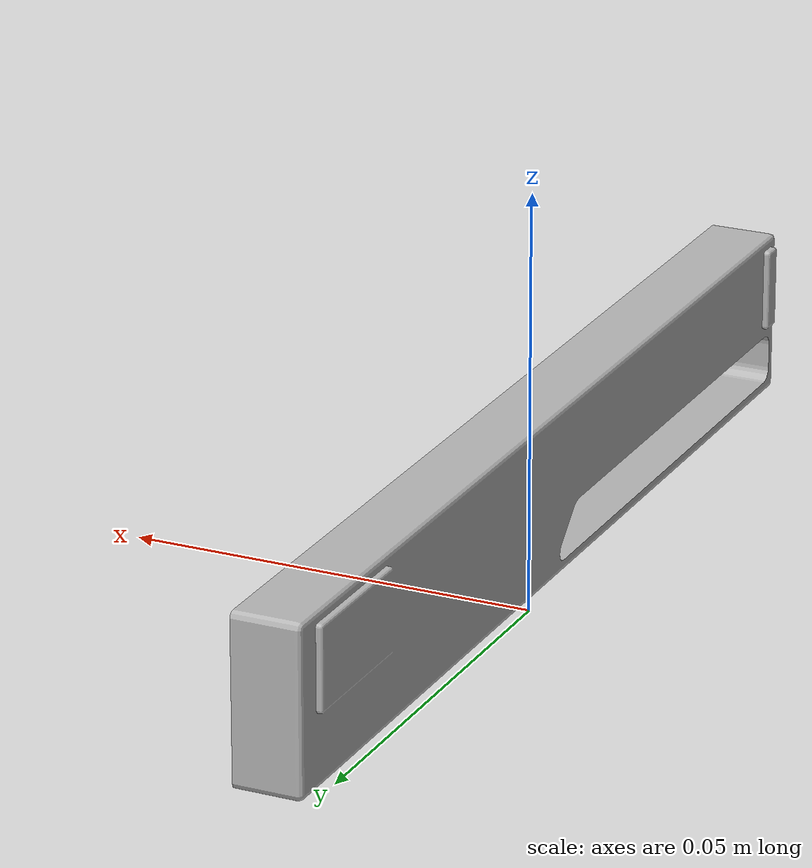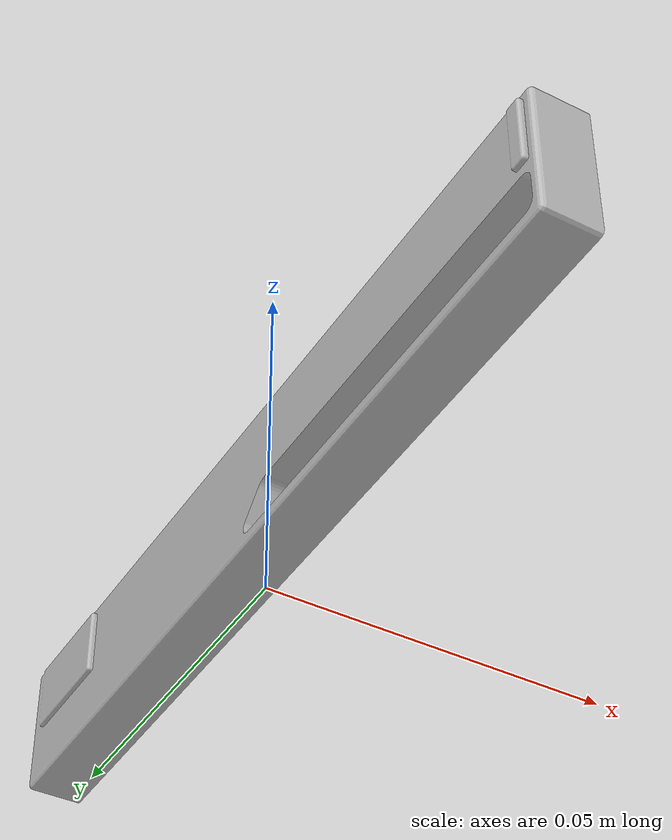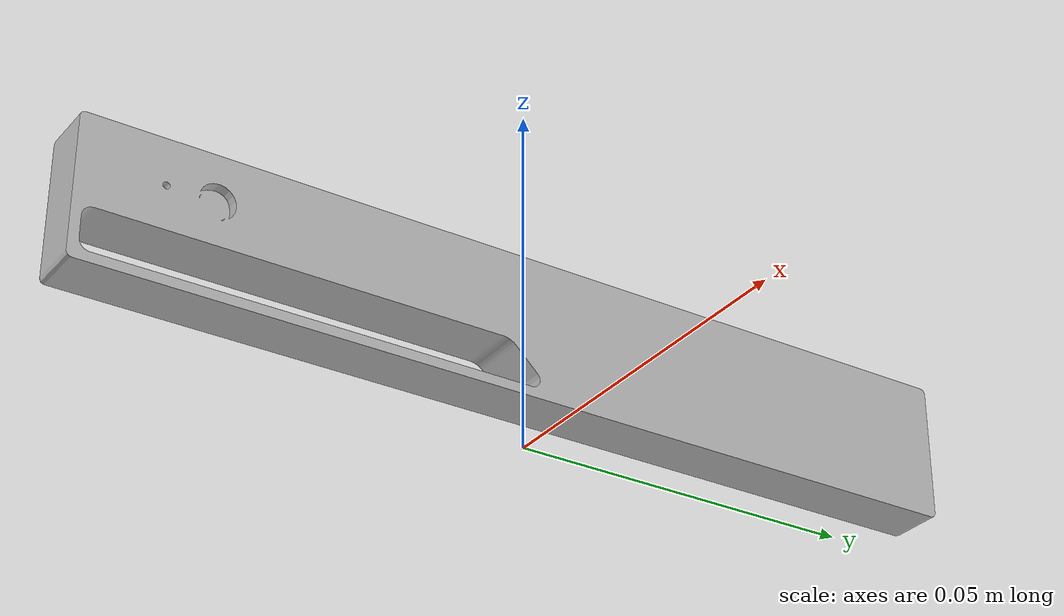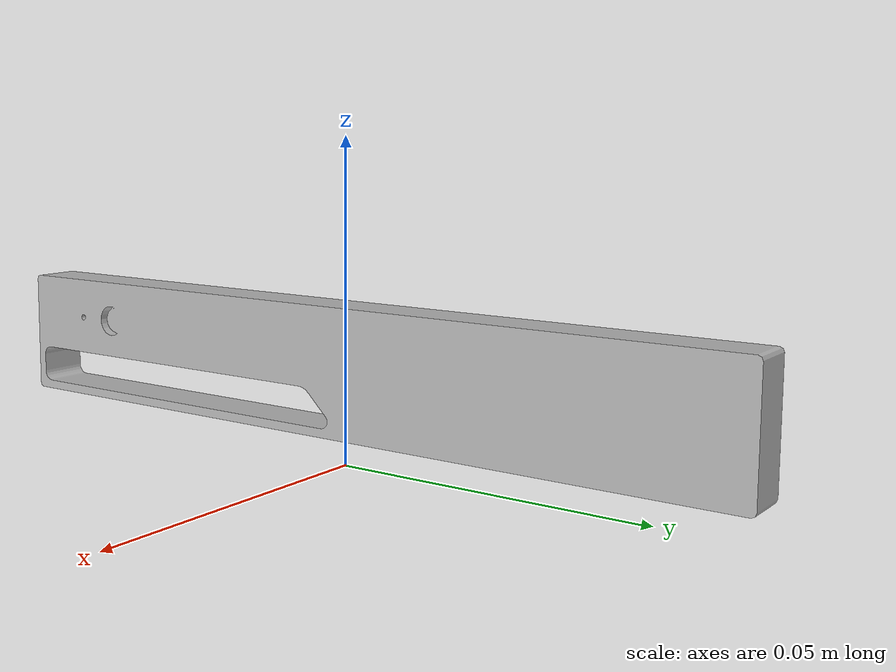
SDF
<?xml version="1.0"?>
<sdf version="1.4">
  <model name="realsense_camera">
    <plugin name="realsense_plugin" filename="librealsense_gazebo_plugin.so"/>
    <pose frame="">0 0 0.015 0 0 0</pose>
    <link name="link">
      <inertial>
        <mass>0.0615752</mass>
        <inertia>
          <ixx>9.108e-05</ixx>
          <ixy>0</ixy>
          <ixz>0</ixz>
          <iyy>2.51e-06</iyy>
          <iyz>0</iyz>
          <izz>8.931e-05</izz>
        </inertia>
        <pose frame=''>0 0 0 0 0 0</pose>
      </inertial>
      <self_collide>0</self_collide>
      <enable_wind>0</enable_wind>
      <kinematic>0</kinematic>
      <gravity>1</gravity>
      <visual name="visual">
        <geometry>
          <mesh>
            <uri>model://realsense_camera/meshes/realsense.dae</uri>
          </mesh>
        </geometry>
      </visual>
      <collision name='collision'>
        <laser_retro>0</laser_retro>
        <max_contacts>10</max_contacts>
        <pose frame=''>0 0 0 0 -0 0</pose>
        <geometry>
          <box>
            <size>0.0078 0.130 0.0192</size>
          </box>
        </geometry>
        <surface>
          <friction>
            <ode>
              <mu>1</mu>
              <mu2>1</mu2>
              <fdir1>0 0 0</fdir1>
              <slip1>0</slip1>
              <slip2>0</slip2>
            </ode>
            <torsional>
              <coefficient>1</coefficient>
              <patch_radius>0</patch_radius>
              <surface_radius>0</surface_radius>
              <use_patch_radius>1</use_patch_radius>
              <ode>
                <slip>0</slip>
              </ode>
            </torsional>
          </friction>
          <bounce>
            <restitution_coefficient>0</restitution_coefficient>
            <threshold>1e+06</threshold>
          </bounce>
          <contact>
            <collide_without_contact>0</collide_without_contact>
            <collide_without_contact_bitmask>1</collide_without_contact_bitmask>
            <collide_bitmask>1</collide_bitmask>
            <ode>
              <soft_cfm>0</soft_cfm>
              <soft_erp>0.2</soft_erp>
              <kp>1e+13</kp>
              <kd>1</kd>
              <max_vel>0.01</max_vel>
              <min_depth>0</min_depth>
            </ode>
            <bullet>
              <split_impulse>1</split_impulse>
              <split_impulse_penetration_threshold>-0.01</split_impulse_penetration_threshold>
              <soft_cfm>0</soft_cfm>
              <soft_erp>0.2</soft_erp>
              <kp>1e+13</kp>
              <kd>1</kd>
            </bullet>
          </contact>
        </surface>
      </collision>
      <sensor name="color" type="camera">
        <pose frame="">0 -0.046 0.004 0 0 0</pose>
        <camera name="__default__">
          <horizontal_fov>1.047</horizontal_fov>
          <image>
            <width>640</width>
            <height>480</height>
            <format>RGB_INT8</format>
          </image>
          <clip>
            <near>0.1</near>
            <far>100</far>
          </clip>
          <noise>
            <type>gaussian</type>
            <mean>0.0</mean>
            <stddev>0.007</stddev>
          </noise>
        </camera>
        <always_on>1</always_on>
        <update_rate>60</update_rate>
        <visualize>1</visualize>
      </sensor>
      <sensor name="ired1" type="camera">
        <pose frame="">0 -0.06 0.004 0 0 0</pose>
        <camera name="__default__">
          <horizontal_fov>1.047</horizontal_fov>
          <image>
            <width>640</width>
            <height>480</height>
            <format>L_INT8</format>
          </image>
          <clip>
            <near>0.1</near>
            <far>100</far>
          </clip>
          <noise>
            <type>gaussian</type>
            <mean>0.0</mean>
            <stddev>0.007</stddev>
          </noise>
        </camera>
        <always_on>1</always_on>
        <update_rate>60</update_rate>
        <visualize>0</visualize>
      </sensor>
      <sensor name="ired2" type="camera">
        <pose frame="">0 0.01 0.004 0 0 0</pose>
        <camera name="__default__">
          <horizontal_fov>1.047</horizontal_fov>
          <image>
            <width>640</width>
            <height>480</height>
            <format>L_INT8</format>
          </image>
          <clip>
            <near>0.1</near>
            <far>100</far>
          </clip>
          <noise>
            <type>gaussian</type>
            <mean>0.0</mean>
            <stddev>0.007</stddev>
          </noise>
        </camera>
        <always_on>1</always_on>
        <update_rate>60</update_rate>
        <visualize>0</visualize>
      </sensor>
      <sensor name="depth" type="depth">
        <pose frame="">0 -0.03 0.004 0 0 0</pose>
        <camera name="__default__">
          <horizontal_fov>1.047</horizontal_fov>
          <image>
            <width>640</width>
            <height>480</height>
          </image>
          <clip>
            <near>0.1</near>
            <far>100</far>
          </clip>
          <noise>
            <type>gaussian</type>
            <mean>0.0</mean>
            <stddev>0.007</stddev>
          </noise>
        </camera>
        <always_on>1</always_on>
        <update_rate>60</update_rate>
        <visualize>0</visualize>
      </sensor>
    </link>
  </model>
</sdf>
